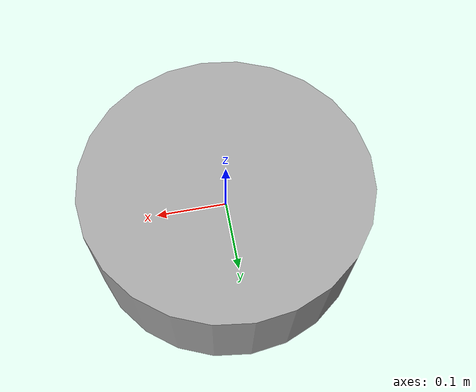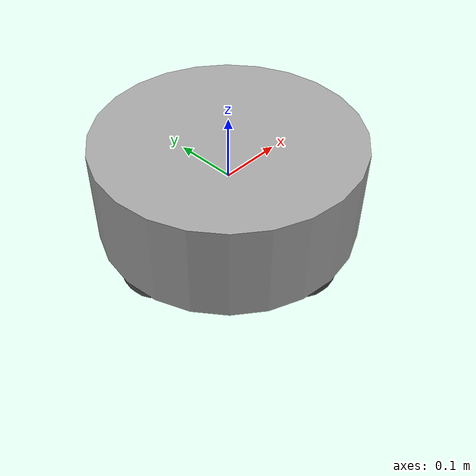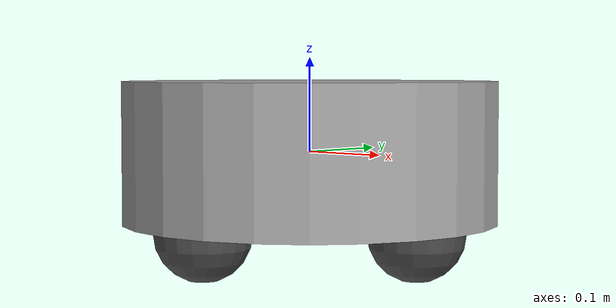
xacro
<?xml version="1.0"?>
<robot name="omni" xmlns:xacro="http://ros.org/wiki/xacro">

  <xacro:property name="M_PI" value="3.1415926535897931" />

  <material name="grey">
    <color rgba="0.65 0.65 0.65 1"/>
  </material>

  <material name="black">
    <color rgba="0.3 0.3 0.3 1"/>
  </material>

  <xacro:macro name="default_inertial" params="mass">
    <inertial>
      <mass value="${mass}"/>
      <inertia ixx="${mass}" ixy="0.0" ixz="0.0" iyy="${mass}" iyz="0.0" izz="${mass}"/>
    </inertial>
  </xacro:macro>

<link name="base_footprint"/>

  <link name="base_link">
    <visual>
      <geometry>
        <cylinder length="0.15" radius="0.201"/>
      </geometry>
      <material name="grey"/>
    </visual>
    <collision>
      <geometry>
        <cylinder length="0.15" radius="0.201"/>
      </geometry>
    </collision>
    <xacro:default_inertial mass="10"/>
  </link>

  <joint name="base_link_joint" type="fixed">
    <parent link="base_footprint"/>
    <child link="base_link"/>
  </joint>

  <xacro:macro name="wheel_link" params="name linkrpy axisxyz originxyz">
    <link name="${name}_wheel">
      <visual>
        <geometry>
          <sphere radius="0.05"/>
        </geometry>
        <origin xyz="0 0 0" rpy="${linkrpy}"/>
        <material name="black"/>
      </visual>
      <collision>
        <geometry>
          <sphere radius="0.05"/>
        </geometry>
        <origin xyz="0 0 0" rpy="${linkrpy}"/>
      </collision>
      <xacro:default_inertial mass="1.0"/>
    </link>

    <joint name="${name}_wheel_joint" type="fixed">
      <axis rpy="0 0 0" xyz="${axisxyz}"/>
      <parent link="base_link"/>
      <child link="${name}_wheel"/>
      <origin xyz="${originxyz}"/>
    </joint>
  </xacro:macro>

  <xacro:wheel_link name="front_right" linkrpy="0 0 0" axisxyz="1 0 0" originxyz="0.15 0 -0.075"/>
  <xacro:wheel_link name="back_left" linkrpy="0 0 0" axisxyz="1 0 0" originxyz="-0.15 0 -0.075"/>
  <xacro:wheel_link name="front_left" linkrpy="0 0 0" axisxyz="0 1 0" originxyz="0 0.15 -0.075"/>
  <xacro:wheel_link name="back_right" linkrpy="0 0 0" axisxyz="0 1 0" originxyz="0 -0.15 -0.075"/>

  <!-- Lidar sensor -->
  <xacro:include filename="lidar_sensor.urdf.xacro"/>
  <!--Q:ray_count_horizontal=60, DQN:ray_count_horizontal=216 -->
  <xacro:lidar_sensor
    name="sonar"
    parent="base_link"
    ros_topic="sonar_front"
    update_rate="40"
    min_range="0.1"
    max_range="30.0"
    field_of_view_horizontal="${270*M_PI/180}"
    field_of_view_vertical="${1*M_PI/180}"
    ray_count_horizontal="62"
    ray_count_vertical="1">
    <origin xyz="0 0.0 0.1" rpy="0 0 ${M_PI/4}"/>
  </xacro:lidar_sensor>

  <gazebo>
    <plugin name="object_controller" filename="libgazebo_ros_planar_move.so">
      <commandTopic>cmd_vel</commandTopic>
      <odometryTopic>odom</odometryTopic>
      <odometryFrame>odom</odometryFrame>
      <odometryRate>20.0</odometryRate>
      <robotBaseFrame>base_footprint</robotBaseFrame>
    </plugin>
  </gazebo>

</robot>

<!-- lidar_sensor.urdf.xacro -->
<robot xmlns:xacro="http://ros.org/wiki/xacro">

  <xacro:macro name="lidar_sensor" params="name parent *origin ros_topic update_rate min_range max_range field_of_view_horizontal field_of_view_vertical ray_count_horizontal ray_count_vertical">
    <joint name="${name}_joint" type="fixed">
      <xacro:insert_block name="origin" />
      <parent link="${parent}"/>
      <child link="${name}_link"/>
    </joint>

    <link name="${name}_link">
      <inertial>
        <mass value="0.001" />
        <origin xyz="0 0 0" rpy="0 0 0" />
        <inertia ixx="0.000000017" ixy="0" ixz="0" iyy="0.000000017" iyz="0" izz="0.000000017" />
      </inertial>
    </link>

    <gazebo reference="${name}_link">
      <sensor type="ray" name="${name}">
        <always_on>true</always_on>
        <update_rate>${update_rate}</update_rate>
        <pose>0 0 0 0 0 0</pose>
        <visualize>true</visualize>
        <ray>
          <scan>
            <horizontal>
              <samples>${ray_count_horizontal}</samples>
              <resolution>0.5</resolution>
              <min_angle>-${field_of_view_horizontal/2}</min_angle>
              <max_angle> ${field_of_view_horizontal/2}</max_angle>
            </horizontal>
            <vertical>
              <samples>${ray_count_vertical}</samples>
              <resolution>1</resolution>
              <min_angle>-${field_of_view_vertical/2}</min_angle>
              <max_angle> ${field_of_view_vertical/2}</max_angle>
            </vertical>
          </scan>
          <range>
            <min>${min_range}</min>
            <max>${max_range}</max>
            <resolution>0.01</resolution>
          </range>
        </ray>

        <plugin name="gazebo_ros_${name}_controller" filename="libhector_gazebo_ros_sonar.so">
          <gaussianNoise>0.005</gaussianNoise>
          <topicName>${ros_topic}</topicName>
          <frameId>${name}_link</frameId>
        </plugin>
        <plugin name="gazebo_ros_${name}_controller" filename="libgazebo_ros_laser.so">
          <topicName>/scan</topicName>
          <frameName>${name}_link</frameName>
        </plugin>
      </sensor>
    </gazebo>
  </xacro:macro>

</robot>
